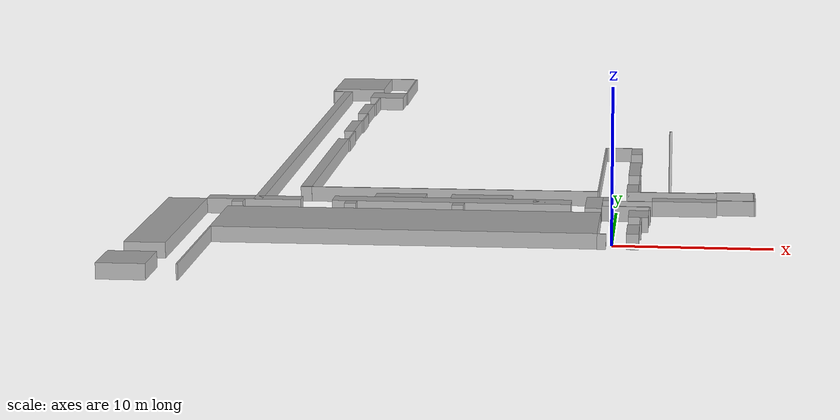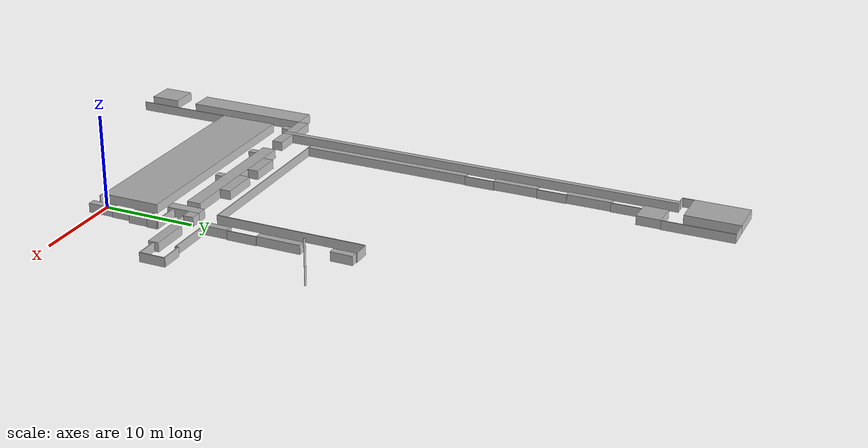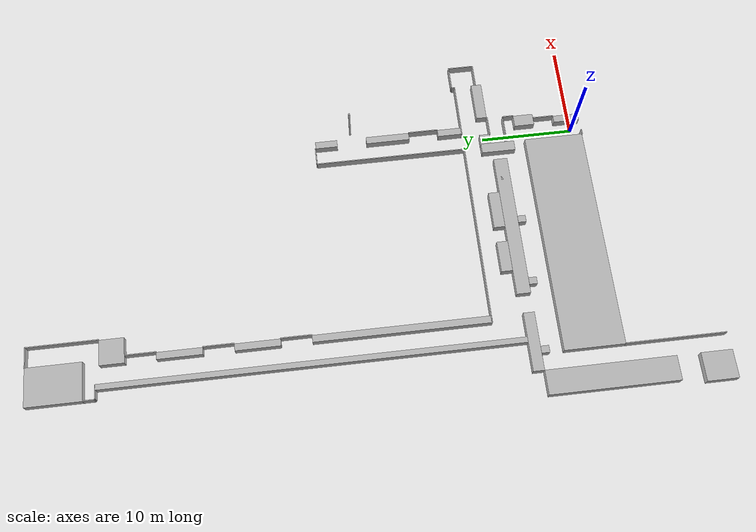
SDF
<?xml version='1.0'?>
<sdf version='1.4'>
<model name="FMT">
 <static>true</static>
 <link name='wall1'>
 <pose>1.29 0.42 0.50 0 0 0</pose>
   <collision name='collision'>
     <geometry>
       <box>
         <size>0.77 2.83 1.00</size>
       </box>
     </geometry>
    </collision>
    <visual name='visual'>
      <geometry>
         <box>
         <size>0.77 2.83 1.00</size>
         </box>
       </geometry>
     </visual>
  </link>

 <link name='wall2'>
 <pose>-0.62 -1.05 0.50 0 0 0</pose>
   <collision name='collision'>
     <geometry>
       <box>
         <size>0.56 0.10 1.00</size>
       </box>
     </geometry>
    </collision>
    <visual name='visual'>
      <geometry>
         <box>
         <size>0.56 0.10 1.00</size>
         </box>
       </geometry>
     </visual>
  </link>

 <link name='wall3'>
 <pose>1.72 2.96 0.50 0 0 0</pose>
   <collision name='collision'>
     <geometry>
       <box>
         <size>0.10 2.27 1.00</size>
       </box>
     </geometry>
    </collision>
    <visual name='visual'>
      <geometry>
         <box>
         <size>0.10 2.27 1.00</size>
         </box>
       </geometry>
     </visual>
  </link>

 <link name='wall4'>
 <pose>1.54 5.20 0.50 0 0 0</pose>
   <collision name='collision'>
     <geometry>
       <box>
         <size>1.28 2.19 1.00</size>
       </box>
     </geometry>
    </collision>
    <visual name='visual'>
      <geometry>
         <box>
         <size>1.28 2.19 1.00</size>
         </box>
       </geometry>
     </visual>
  </link>

 <link name='wall5'>
 <pose>2.23 6.86 0.50 0 0 0</pose>
   <collision name='collision'>
     <geometry>
       <box>
         <size>0.10 1.14 1.00</size>
       </box>
     </geometry>
    </collision>
    <visual name='visual'>
      <geometry>
         <box>
         <size>0.10 1.14 1.00</size>
         </box>
       </geometry>
     </visual>
  </link>

 <link name='wall6'>
 <pose>0.64 7.48 0.50 0 0 0</pose>
   <collision name='collision'>
     <geometry>
       <box>
         <size>3.08 0.10 1.00</size>
       </box>
     </geometry>
    </collision>
    <visual name='visual'>
      <geometry>
         <box>
         <size>3.08 0.10 1.00</size>
         </box>
       </geometry>
     </visual>
  </link>

 <link name='wall7'>
 <pose>-13.06 2.23 0.50 0 0 0</pose>
   <collision name='collision'>
     <geometry>
       <box>
         <size>24.32 6.45 1.00</size>
       </box>
     </geometry>
    </collision>
    <visual name='visual'>
      <geometry>
         <box>
         <size>24.32 6.45 1.00</size>
         </box>
       </geometry>
     </visual>
  </link>

 <link name='wall8'>
 <pose>-1.44 8.56 0.50 0 0 0</pose>
   <collision name='collision'>
     <geometry>
       <box>
         <size>1.08 3.70 1.00</size>
       </box>
     </geometry>
    </collision>
    <visual name='visual'>
      <geometry>
         <box>
         <size>1.08 3.70 1.00</size>
         </box>
       </geometry>
     </visual>
  </link>

 <link name='wall9'>
 <pose>-10.81 8.55 0.50 0 0 0</pose>
   <collision name='collision'>
     <geometry>
       <box>
         <size>15.75 1.50 1.00</size>
       </box>
     </geometry>
    </collision>
    <visual name='visual'>
      <geometry>
         <box>
         <size>15.75 1.50 1.00</size>
         </box>
       </geometry>
     </visual>
  </link>

 <link name='wall10'>
 <pose>-4.86 8.58 0.50 0 0 0</pose>
   <collision name='collision'>
     <geometry>
       <box>
         <size>1.17 0.45 1.00</size>
       </box>
     </geometry>
    </collision>
    <visual name='visual'>
      <geometry>
         <box>
         <size>1.17 0.45 1.00</size>
         </box>
       </geometry>
     </visual>
  </link>

 <link name='wall11'>
 <pose>-10.29 7.37 0.50 0 0 0</pose>
   <collision name='collision'>
     <geometry>
       <box>
         <size>0.75 0.87 1.00</size>
       </box>
     </geometry>
    </collision>
    <visual name='visual'>
      <geometry>
         <box>
         <size>0.75 0.87 1.00</size>
         </box>
       </geometry>
     </visual>
  </link>

 <link name='wall12'>
 <pose>-17.38 7.37 0.50 0 0 0</pose>
   <collision name='collision'>
     <geometry>
       <box>
         <size>0.75 0.87 1.00</size>
       </box>
     </geometry>
    </collision>
    <visual name='visual'>
      <geometry>
         <box>
         <size>0.75 0.87 1.00</size>
         </box>
       </geometry>
     </visual>
  </link>

 <link name='wall13'>
 <pose>-24.86 7.37 0.50 0 0 0</pose>
   <collision name='collision'>
     <geometry>
       <box>
         <size>0.75 0.87 1.00</size>
       </box>
     </geometry>
    </collision>
    <visual name='visual'>
      <geometry>
         <box>
         <size>0.75 0.87 1.00</size>
         </box>
       </geometry>
     </visual>
  </link>

 <link name='wall14'>
 <pose>-23.91 8.39 0.50 0 0 0</pose>
   <collision name='collision'>
     <geometry>
       <box>
         <size>6.24 1.18 1.00</size>
       </box>
     </geometry>
    </collision>
    <visual name='visual'>
      <geometry>
         <box>
         <size>6.24 1.18 1.00</size>
         </box>
       </geometry>
     </visual>
  </link>

 <link name='wall15'>
 <pose>-28.31 0.94 0.50 0 0 0</pose>
   <collision name='collision'>
     <geometry>
       <box>
         <size>2.58 13.73 1.00</size>
       </box>
     </geometry>
    </collision>
    <visual name='visual'>
      <geometry>
         <box>
         <size>2.58 13.73 1.00</size>
         </box>
       </geometry>
     </visual>
  </link>

 <link name='wall16'>
 <pose>-25.17 -6.31 0.50 0 0 0</pose>
   <collision name='collision'>
     <geometry>
       <box>
         <size>0.10 10.62 1.00</size>
       </box>
     </geometry>
    </collision>
    <visual name='visual'>
      <geometry>
         <box>
         <size>0.10 10.62 1.00</size>
         </box>
       </geometry>
     </visual>
  </link>

 <link name='wall17'>
 <pose>-28.52 -10.07 0.50 0 0 0</pose>
   <collision name='collision'>
     <geometry>
       <box>
         <size>3.00 3.33 1.00</size>
       </box>
     </geometry>
    </collision>
    <visual name='visual'>
      <geometry>
         <box>
         <size>3.00 3.33 1.00</size>
         </box>
       </geometry>
     </visual>
  </link>

 <link name='wall18'>
 <pose>-8.94 9.90 0.50 0 0 0</pose>
   <collision name='collision'>
     <geometry>
       <box>
         <size>4.07 1.20 1.00</size>
       </box>
     </geometry>
    </collision>
    <visual name='visual'>
      <geometry>
         <box>
         <size>4.07 1.20 1.00</size>
         </box>
       </geometry>
     </visual>
  </link>

 <link name='wall19'>
 <pose>-14.35 9.90 0.50 0 0 0</pose>
   <collision name='collision'>
     <geometry>
       <box>
         <size>3.36 1.20 1.00</size>
       </box>
     </geometry>
    </collision>
    <visual name='visual'>
      <geometry>
         <box>
         <size>3.36 1.20 1.00</size>
         </box>
       </geometry>
     </visual>
  </link>

 <link name='wall20'>
 <pose>-0.34 9.85 0.50 0 0 0</pose>
   <collision name='collision'>
     <geometry>
       <box>
         <size>1.12 1.13 1.00</size>
       </box>
     </geometry>
    </collision>
    <visual name='visual'>
      <geometry>
         <box>
         <size>1.12 1.13 1.00</size>
         </box>
       </geometry>
     </visual>
  </link>

 <link name='wall21'>
 <pose>1.29 9.23 0.50 0 0 0</pose>
   <collision name='collision'>
     <geometry>
       <box>
         <size>2.13 0.10 1.00</size>
       </box>
     </geometry>
    </collision>
    <visual name='visual'>
      <geometry>
         <box>
         <size>2.13 0.10 1.00</size>
         </box>
       </geometry>
     </visual>
  </link>

 <link name='wall22'>
 <pose>4.47 9.85 0.50 0 0 0</pose>
   <collision name='collision'>
     <geometry>
       <box>
         <size>4.24 1.13 1.00</size>
       </box>
     </geometry>
    </collision>
    <visual name='visual'>
      <geometry>
         <box>
         <size>4.24 1.13 1.00</size>
         </box>
       </geometry>
     </visual>
  </link>

 <link name='wall23'>
 <pose>3.59 12.34 0.50 0 0 0</pose>
   <collision name='collision'>
     <geometry>
       <box>
         <size>6.00 0.10 1.00</size>
       </box>
     </geometry>
    </collision>
    <visual name='visual'>
      <geometry>
         <box>
         <size>6.00 0.10 1.00</size>
         </box>
       </geometry>
     </visual>
  </link>

 <link name='wall24'>
 <pose>0.98 13.65 0.50 0 0 0</pose>
   <collision name='collision'>
     <geometry>
       <box>
         <size>0.78 2.72 1.00</size>
       </box>
     </geometry>
    </collision>
    <visual name='visual'>
      <geometry>
         <box>
         <size>0.78 2.72 1.00</size>
         </box>
       </geometry>
     </visual>
  </link>

 <link name='wall25'>
 <pose>1.42 16.64 0.50 0 0 0</pose>
   <collision name='collision'>
     <geometry>
       <box>
         <size>0.10 3.26 1.00</size>
       </box>
     </geometry>
    </collision>
    <visual name='visual'>
      <geometry>
         <box>
         <size>0.10 3.26 1.00</size>
         </box>
       </geometry>
     </visual>
  </link>

 <link name='wall26'>
 <pose>0.98 20.66 0.50 0 0 0</pose>
   <collision name='collision'>
     <geometry>
       <box>
         <size>0.78 4.79 1.00</size>
       </box>
     </geometry>
    </collision>
    <visual name='visual'>
      <geometry>
         <box>
         <size>0.78 4.79 1.00</size>
         </box>
       </geometry>
     </visual>
  </link>

 <link name='wall28'>
 <pose>0.98 27.52 0.50 0 0 0</pose>
   <collision name='collision'>
     <geometry>
       <box>
         <size>0.78 2.41 1.00</size>
       </box>
     </geometry>
    </collision>
    <visual name='visual'>
      <geometry>
         <box>
         <size>0.78 2.41 1.00</size>
         </box>
       </geometry>
     </visual>
  </link>

 <link name='wall29'>
 <pose>-0.33 28.78 0.50 0 0 0</pose>
   <collision name='collision'>
     <geometry>
       <box>
         <size>1.84 0.10 1.00</size>
       </box>
     </geometry>
    </collision>
    <visual name='visual'>
      <geometry>
         <box>
         <size>1.84 0.10 1.00</size>
         </box>
       </geometry>
     </visual>
  </link>

 <link name='wall30'>
 <pose>-1.30 20.51 0.50 0 0 0</pose>
   <collision name='collision'>
     <geometry>
       <box>
         <size>0.10 16.44 1.00</size>
       </box>
     </geometry>
    </collision>
    <visual name='visual'>
      <geometry>
         <box>
         <size>0.10 16.44 1.00</size>
         </box>
       </geometry>
     </visual>
  </link>

 <link name='wall31'>
 <pose>-11.35 12.34 0.50 0 0 0</pose>
   <collision name='collision'>
     <geometry>
       <box>
         <size>20.00 0.10 1.00</size>
       </box>
     </geometry>
    </collision>
    <visual name='visual'>
      <geometry>
         <box>
         <size>20.00 0.10 1.00</size>
         </box>
       </geometry>
     </visual>
  </link>

 <link name='wall32'>
 <pose>-23.64 30.61 0.50 0 0 0</pose>
   <collision name='collision'>
     <geometry>
       <box>
         <size>0.60 45.61 1.00</size>
       </box>
     </geometry>
    </collision>
    <visual name='visual'>
      <geometry>
         <box>
         <size>0.60 45.61 1.00</size>
         </box>
       </geometry>
     </visual>
  </link>

 <link name='wall33'>
 <pose>-21.07 21.66 0.50 0 0 0</pose>
   <collision name='collision'>
     <geometry>
       <box>
         <size>0.75 18.75 1.00</size>
       </box>
     </geometry>
    </collision>
    <visual name='visual'>
      <geometry>
         <box>
         <size>0.75 18.75 1.00</size>
         </box>
       </geometry>
     </visual>
  </link>

 <link name='wall34'>
 <pose>-20.64 32.66 0.50 0 0 0</pose>
   <collision name='collision'>
     <geometry>
       <box>
         <size>0.10 3.25 1.00</size>
       </box>
     </geometry>
    </collision>
    <visual name='visual'>
      <geometry>
         <box>
         <size>0.10 3.25 1.00</size>
         </box>
       </geometry>
     </visual>
  </link>

 <link name='wall35'>
 <pose>-21.07 36.67 0.50 0 0 0</pose>
   <collision name='collision'>
     <geometry>
       <box>
         <size>0.75 4.77 1.00</size>
       </box>
     </geometry>
    </collision>
    <visual name='visual'>
      <geometry>
         <box>
         <size>0.75 4.77 1.00</size>
         </box>
       </geometry>
     </visual>
  </link>

 <link name='wall36'>
 <pose>-20.64 40.69 0.50 0 0 0</pose>
   <collision name='collision'>
     <geometry>
       <box>
         <size>0.10 3.25 1.00</size>
       </box>
     </geometry>
    </collision>
    <visual name='visual'>
      <geometry>
         <box>
         <size>0.10 3.25 1.00</size>
         </box>
       </geometry>
     </visual>
  </link>

 <link name='wall37'>
 <pose>-21.07 44.70 0.50 0 0 0</pose>
   <collision name='collision'>
     <geometry>
       <box>
         <size>0.75 4.77 1.00</size>
       </box>
     </geometry>
    </collision>
    <visual name='visual'>
      <geometry>
         <box>
         <size>0.75 4.77 1.00</size>
         </box>
       </geometry>
     </visual>
  </link>

 <link name='wall38'>
 <pose>-20.64 48.70 0.50 0 0 0</pose>
   <collision name='collision'>
     <geometry>
       <box>
         <size>0.10 3.25 1.00</size>
       </box>
     </geometry>
    </collision>
    <visual name='visual'>
      <geometry>
         <box>
         <size>0.10 3.25 1.00</size>
         </box>
       </geometry>
     </visual>
  </link>

 <link name='wall39'>
 <pose>-20.09 51.63 0.50 0 0 0</pose>
   <collision name='collision'>
     <geometry>
       <box>
         <size>2.70 2.60 1.00</size>
       </box>
     </geometry>
    </collision>
    <visual name='visual'>
      <geometry>
         <box>
         <size>2.70 2.60 1.00</size>
         </box>
       </geometry>
     </visual>
  </link>

 <link name='wall40'>
 <pose>-24.09 53.36 0.50 0 0 0</pose>
   <collision name='collision'>
     <geometry>
       <box>
         <size>1.50 0.10 1.00</size>
       </box>
     </geometry>
    </collision>
    <visual name='visual'>
      <geometry>
         <box>
         <size>1.50 0.10 1.00</size>
         </box>
       </geometry>
     </visual>
  </link>

 <link name='wall41'>
 <pose>-24.89 54.01 0.50 0 0 0</pose>
   <collision name='collision'>
     <geometry>
       <box>
         <size>0.10 1.20 1.00</size>
       </box>
     </geometry>
    </collision>
    <visual name='visual'>
      <geometry>
         <box>
         <size>0.10 1.20 1.00</size>
         </box>
       </geometry>
     </visual>
  </link>

 <link name='wall42'>
 <pose>-22.89 57.56 0.50 0 0 0</pose>
   <collision name='collision'>
     <geometry>
       <box>
         <size>4.10 5.90 1.00</size>
       </box>
     </geometry>
    </collision>
    <visual name='visual'>
      <geometry>
         <box>
         <size>4.10 5.90 1.00</size>
         </box>
       </geometry>
     </visual>
  </link>

 <link name='wall43'>
 <pose>-18.69 56.73 0.50 0 0 0</pose>
   <collision name='collision'>
     <geometry>
       <box>
         <size>0.10 7.60 1.00</size>
       </box>
     </geometry>
    </collision>
    <visual name='visual'>
      <geometry>
         <box>
         <size>0.10 7.60 1.00</size>
         </box>
       </geometry>
     </visual>
  </link>

 <link name='wall44'>
 <pose>-19.77 60.48 0.50 0 0 0</pose>
   <collision name='collision'>
     <geometry>
       <box>
         <size>2.25 0.10 1.00</size>
       </box>
     </geometry>
    </collision>
    <visual name='visual'>
      <geometry>
         <box>
         <size>2.25 0.10 1.00</size>
         </box>
       </geometry>
     </visual>
  </link>

 <link name='wall45'>
 <pose>7.82 9.91 0.50 0 0 0</pose>
   <collision name='collision'>
     <geometry>
       <box>
         <size>2.45 0.10 1.00</size>
       </box>
     </geometry>
    </collision>
    <visual name='visual'>
      <geometry>
         <box>
         <size>2.45 0.10 1.00</size>
         </box>
       </geometry>
     </visual>
  </link>

 <link name='wall46'>
 <pose>6.54 12.46 0.50 0 0 0</pose>
   <collision name='collision'>
     <geometry>
       <box>
         <size>0.10 0.33 1.00</size>
       </box>
     </geometry>
    </collision>
    <visual name='visual'>
      <geometry>
         <box>
         <size>0.10 0.33 1.00</size>
         </box>
       </geometry>
     </visual>
  </link>

 <link name='wall47'>
 <pose>7.82 12.67 0.50 0 0 0</pose>
   <collision name='collision'>
     <geometry>
       <box>
         <size>2.45 0.10 1.00</size>
       </box>
     </geometry>
    </collision>
    <visual name='visual'>
      <geometry>
         <box>
         <size>2.45 0.10 1.00</size>
         </box>
       </geometry>
     </visual>
  </link>

 <link name='wall48'>
 <pose>9.09 11.30 0.50 0 0 0</pose>
   <collision name='collision'>
     <geometry>
       <box>
         <size>0.10 2.83 1.00</size>
       </box>
     </geometry>
    </collision>
    <visual name='visual'>
      <geometry>
         <box>
         <size>0.10 2.83 1.00</size>
         </box>
       </geometry>
     </visual>
  </link>

 <link name='goal'>
 <pose>3.42 24.69 0.50 0 0 0</pose>
   <collision name='collision'>
     <geometry>
       <cylinder>
         <radius>0.1</radius>
         <length>5.0</length>
       </cylinder>
     </geometry>
    </collision>
    <visual name='visual'>
      <geometry>
         <cylinder>
         <radius>0.1</radius>
         <length>5.0</length>
         </cylinder>
       </geometry>
     </visual>
  </link>
 <link name='start'>
 <pose>0 0 0.025 0 0 0</pose>
    <visual name='visual'>
      <geometry>
         <cylinder>
         <radius>0.05</radius>
         <length>0.05</length>
         </cylinder>
       </geometry>
     </visual>
  </link>
</model>
</sdf>
